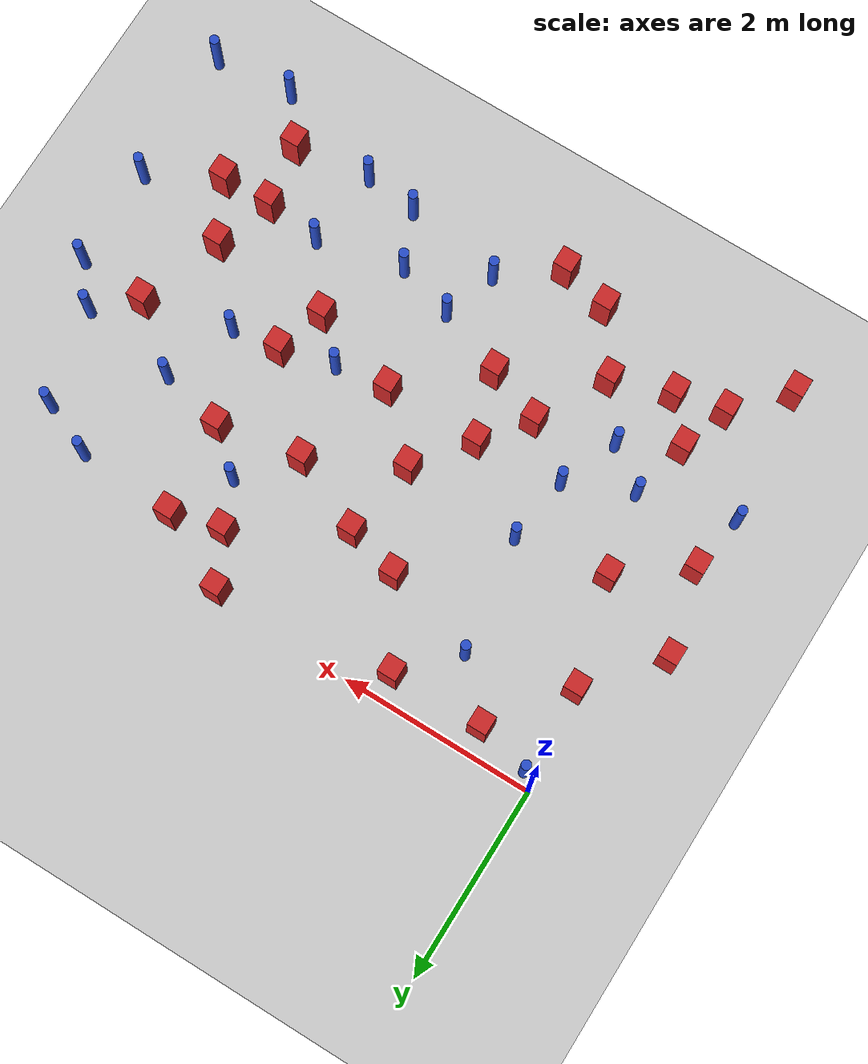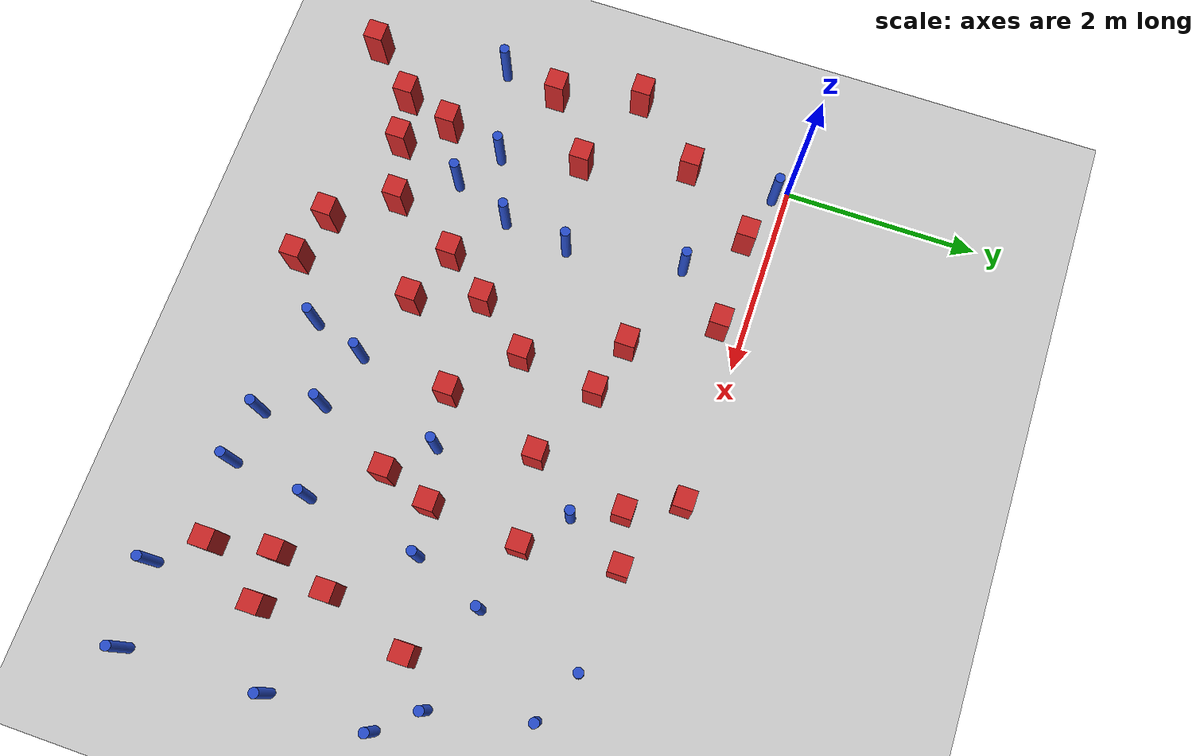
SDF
<sdf version="1.6">
 <world name="default">
  <model name="ground_plane">
   <static>1</static>
   <link name="link">
    <collision name="collision">
     <geometry><plane><normal>0 0 1</normal><size>100 100</size></plane></geometry>
     <surface><friction><ode><mu>100</mu><mu2>50</mu2></ode></friction></surface>
    </collision>
    <visual name="visual">
     <cast_shadows>0</cast_shadows>
     <geometry><plane><normal>0 0 1</normal><size>100 100</size></plane></geometry>
     <material>
      <ambient>1.0 1.0 1.0 1.0</ambient>
      <diffuse>0.8 0.8 0.8 1.0</diffuse>
      <specular>0.01 0.01 0.01 1.000000</specular>
     </material>
    </visual>
   </link>
  </model>
  <model name="NamedLocations">
   <static>true</static>
   <link name="DefaultStart"><pose>8.5 0 0 0 0 3.14</pose></link>
  </model>
  <model name="pole_obstacle6">
   <static>true</static>
   <pose>1.34641846792 -1.97543661857 2.88873142074e-08 -9.90536689899e-09 4.60219948988e-07 -1.20965994961e-07</pose>
   <link name="link">
    <pose>0 0 0.3 0 -0 0</pose>
    <inertial>
     <mass>1</mass>
     <inertia><ixx>0.145833</ixx><ixy>0</ixy><ixz>0</ixz><iyy>0.145833</iyy><iyz>0</iyz><izz>0.125</izz></inertia>
    </inertial>
    <collision name="collision">
     <geometry><cylinder><radius>0.05</radius><length>.6</length></cylinder></geometry>
    </collision>
    <visual name="visual">
     <geometry><cylinder><radius>0.05</radius><length>.6</length></cylinder></geometry>
     <material>
      <script><name>Gazebo/Blue</name><uri>file://media/materials/scripts/gazebo.material</uri></script>
     </material>
    </visual>
   </link>
  </model>
  <model name="pole_obstacle10">
   <static>true</static>
   <pose>5.80582002486 -0.743763885813 2.88873142074e-08 -9.90536689837e-09 4.60219948989e-07 -1.2096599496e-07</pose>
   <link name="link">
    <pose>0 0 0.3 0 -0 0</pose>
    <inertial>
     <mass>1</mass>
     <inertia><ixx>0.145833</ixx><ixy>0</ixy><ixz>0</ixz><iyy>0.145833</iyy><iyz>0</iyz><izz>0.125</izz></inertia>
    </inertial>
    <collision name="collision">
     <geometry><cylinder><radius>0.05</radius><length>.6</length></cylinder></geometry>
    </collision>
    <visual name="visual">
     <geometry><cylinder><radius>0.05</radius><length>.6</length></cylinder></geometry>
     <material>
      <script><name>Gazebo/Blue</name><uri>file://media/materials/scripts/gazebo.material</uri></script>
     </material>
    </visual>
   </link>
  </model>
  <model name="square_post_obstacle14">
   <static>true</static>
   <pose>1.64560090452 -0.264269106683 8.22691968438e-08 7.22125133819e-06 -7.54495500217e-07 2.29674213826e-05</pose>
   <link name="link">
    <pose>0 0 0.25 0 -0 0</pose>
    <inertial>
     <mass>100</mass>
     <inertia>
      <ixx>0.166667</ixx>
      <ixy>0</ixy>
      <ixz>0</ixz>
      <iyy>0.166667</iyy>
      <iyz>0</iyz>
      <izz>0.166667</izz>
     </inertia>
    </inertial>
    <collision name="collision"><geometry><box><size>.2 .2 .5</size></box></geometry></collision>
    <visual name="visual">
     <geometry><box><size>.2 .2 .5</size></box></geometry>
     <material>
      <script><name>Gazebo/Red</name><uri>file://media/materials/scripts/gazebo.material</uri></script>
     </material>
    </visual>
   </link>
  </model>
  <model name="pole_obstacle20">
   <static>true</static>
   <pose>6.03167344364 -1.739237854 2.88873142074e-08 -9.90536689445e-09 4.60219948999e-07 -1.20965994956e-07</pose>
   <link name="link">
    <pose>0 0 0.3 0 -0 0</pose>
    <inertial>
     <mass>1</mass>
     <inertia><ixx>0.145833</ixx><ixy>0</ixy><ixz>0</ixz><iyy>0.145833</iyy><iyz>0</iyz><izz>0.125</izz></inertia>
    </inertial>
    <collision name="collision">
     <geometry><cylinder><radius>0.05</radius><length>.6</length></cylinder></geometry>
    </collision>
    <visual name="visual">
     <geometry><cylinder><radius>0.05</radius><length>.6</length></cylinder></geometry>
     <material>
      <script><name>Gazebo/Blue</name><uri>file://media/materials/scripts/gazebo.material</uri></script>
     </material>
    </visual>
   </link>
  </model>
  <model name="pole_obstacle27">
   <static>true</static>
   <pose>4.74106831965 -2.30007522335 2.88873142074e-08 -9.90536690245e-09 4.6021994898e-07 -1.20965994966e-07</pose>
   <link name="link">
    <pose>0 0 0.3 0 -0 0</pose>
    <inertial>
     <mass>1</mass>
     <inertia><ixx>0.145833</ixx><ixy>0</ixy><ixz>0</ixz><iyy>0.145833</iyy><iyz>0</iyz><izz>0.125</izz></inertia>
    </inertial>
    <collision name="collision">
     <geometry><cylinder><radius>0.05</radius><length>.6</length></cylinder></geometry>
    </collision>
    <visual name="visual">
     <geometry><cylinder><radius>0.05</radius><length>.6</length></cylinder></geometry>
     <material>
      <script><name>Gazebo/Blue</name><uri>file://media/materials/scripts/gazebo.material</uri></script>
     </material>
    </visual>
   </link>
  </model>
  <model name="pole_obstacle30">
   <static>true</static>
   <pose>2.88440577546 -4.08760206621 2.88873142074e-08 -9.90536689859e-09 4.60219948989e-07 -1.20965994961e-07</pose>
   <link name="link">
    <pose>0 0 0.3 0 -0 0</pose>
    <inertial>
     <mass>1</mass>
     <inertia><ixx>0.145833</ixx><ixy>0</ixy><ixz>0</ixz><iyy>0.145833</iyy><iyz>0</iyz><izz>0.125</izz></inertia>
    </inertial>
    <collision name="collision">
     <geometry><cylinder><radius>0.05</radius><length>.6</length></cylinder></geometry>
    </collision>
    <visual name="visual">
     <geometry><cylinder><radius>0.05</radius><length>.6</length></cylinder></geometry>
     <material>
      <script><name>Gazebo/Blue</name><uri>file://media/materials/scripts/gazebo.material</uri></script>
     </material>
    </visual>
   </link>
  </model>
  <model name="pole_obstacle41">
   <static>true</static>
   <pose>5.01929388465 -1.57533760443 2.88873142074e-08 -9.90536689445e-09 4.60219948999e-07 -1.20965994956e-07</pose>
   <link name="link">
    <pose>0 0 0.3 0 -0 0</pose>
    <inertial>
     <mass>1</mass>
     <inertia><ixx>0.145833</ixx><ixy>0</ixy><ixz>0</ixz><iyy>0.145833</iyy><iyz>0</iyz><izz>0.125</izz></inertia>
    </inertial>
    <collision name="collision">
     <geometry><cylinder><radius>0.05</radius><length>.6</length></cylinder></geometry>
    </collision>
    <visual name="visual">
     <geometry><cylinder><radius>0.05</radius><length>.6</length></cylinder></geometry>
     <material>
      <script><name>Gazebo/Blue</name><uri>file://media/materials/scripts/gazebo.material</uri></script>
     </material>
    </visual>
   </link>
  </model>
  <model name="square_post_obstacle31">
   <static>true</static>
   <pose>-0.474966905245 -1.75005010223 8.22691968438e-08 7.2212513382e-06 -7.54495500217e-07 2.29674213826e-05</pose>
   <link name="link">
    <pose>0 0 0.25 0 -0 0</pose>
    <inertial>
     <mass>100</mass>
     <inertia>
      <ixx>0.166667</ixx>
      <ixy>0</ixy>
      <ixz>0</ixz>
      <iyy>0.166667</iyy>
      <iyz>0</iyz>
      <izz>0.166667</izz>
     </inertia>
    </inertial>
    <collision name="collision"><geometry><box><size>.2 .2 .5</size></box></geometry></collision>
    <visual name="visual">
     <geometry><box><size>.2 .2 .5</size></box></geometry>
     <material>
      <script><name>Gazebo/Red</name><uri>file://media/materials/scripts/gazebo.material</uri></script>
     </material>
    </visual>
   </link>
  </model>
  <model name="square_post_obstacle34">
   <static>true</static>
   <pose>4.07631354166 -2.87549634228 8.22691968438e-08 7.2212513382e-06 -7.54495500217e-07 2.29674213826e-05</pose>
   <link name="link">
    <pose>0 0 0.25 0 -0 0</pose>
    <inertial>
     <mass>100</mass>
     <inertia>
      <ixx>0.166667</ixx>
      <ixy>0</ixy>
      <ixz>0</ixz>
      <iyy>0.166667</iyy>
      <iyz>0</iyz>
      <izz>0.166667</izz>
     </inertia>
    </inertial>
    <collision name="collision"><geometry><box><size>.2 .2 .5</size></box></geometry></collision>
    <visual name="visual">
     <geometry><box><size>.2 .2 .5</size></box></geometry>
     <material>
      <script><name>Gazebo/Red</name><uri>file://media/materials/scripts/gazebo.material</uri></script>
     </material>
    </visual>
   </link>
  </model>
  <model name="pole_obstacle46">
   <static>true</static>
   <pose>3.06816379555 -3.53167319148 2.88873142074e-08 -9.90536690232e-09 4.6021994898e-07 -1.20965994968e-07</pose>
   <link name="link">
    <pose>0 0 0.3 0 -0 0</pose>
    <inertial>
     <mass>1</mass>
     <inertia><ixx>0.145833</ixx><ixy>0</ixy><ixz>0</ixz><iyy>0.145833</iyy><iyz>0</iyz><izz>0.125</izz></inertia>
    </inertial>
    <collision name="collision">
     <geometry><cylinder><radius>0.05</radius><length>.6</length></cylinder></geometry>
    </collision>
    <visual name="visual">
     <geometry><cylinder><radius>0.05</radius><length>.6</length></cylinder></geometry>
     <material>
      <script><name>Gazebo/Blue</name><uri>file://media/materials/scripts/gazebo.material</uri></script>
     </material>
    </visual>
   </link>
  </model>
  <model name="square_post_obstacle36">
   <static>true</static>
   <pose>5.32274232376 -2.96270476797 8.22691968438e-08 7.2212513382e-06 -7.54495500217e-07 2.29674213826e-05</pose>
   <link name="link">
    <pose>0 0 0.25 0 -0 0</pose>
    <inertial>
     <mass>100</mass>
     <inertia>
      <ixx>0.166667</ixx>
      <ixy>0</ixy>
      <ixz>0</ixz>
      <iyy>0.166667</iyy>
      <iyz>0</iyz>
      <izz>0.166667</izz>
     </inertia>
    </inertial>
    <collision name="collision"><geometry><box><size>.2 .2 .5</size></box></geometry></collision>
    <visual name="visual">
     <geometry><box><size>.2 .2 .5</size></box></geometry>
     <material>
      <script><name>Gazebo/Red</name><uri>file://media/materials/scripts/gazebo.material</uri></script>
     </material>
    </visual>
   </link>
  </model>
  <model name="square_post_obstacle37">
   <static>true</static>
   <pose>3.46657610358 -1.55949613198 8.22691968438e-08 7.2212513382e-06 -7.54495500217e-07 2.29674213826e-05</pose>
   <link name="link">
    <pose>0 0 0.25 0 -0 0</pose>
    <inertial>
     <mass>100</mass>
     <inertia>
      <ixx>0.166667</ixx>
      <ixy>0</ixy>
      <ixz>0</ixz>
      <iyy>0.166667</iyy>
      <iyz>0</iyz>
      <izz>0.166667</izz>
     </inertia>
    </inertial>
    <collision name="collision"><geometry><box><size>.2 .2 .5</size></box></geometry></collision>
    <visual name="visual">
     <geometry><box><size>.2 .2 .5</size></box></geometry>
     <material>
      <script><name>Gazebo/Red</name><uri>file://media/materials/scripts/gazebo.material</uri></script>
     </material>
    </visual>
   </link>
  </model>
  <model name="pole_obstacle52">
   <static>true</static>
   <pose>4.45046576271 -4.32073719949 2.88873142074e-08 -9.90536690842e-09 4.60219948965e-07 -1.20965994976e-07</pose>
   <link name="link">
    <pose>0 0 0.3 0 -0 0</pose>
    <inertial>
     <mass>1</mass>
     <inertia><ixx>0.145833</ixx><ixy>0</ixy><ixz>0</ixz><iyy>0.145833</iyy><iyz>0</iyz><izz>0.125</izz></inertia>
    </inertial>
    <collision name="collision">
     <geometry><cylinder><radius>0.05</radius><length>.6</length></cylinder></geometry>
    </collision>
    <visual name="visual">
     <geometry><cylinder><radius>0.05</radius><length>.6</length></cylinder></geometry>
     <material>
      <script><name>Gazebo/Blue</name><uri>file://media/materials/scripts/gazebo.material</uri></script>
     </material>
    </visual>
   </link>
  </model>
  <model name="square_post_obstacle54">
   <static>true</static>
   <pose>-0.251787581725 -2.61775318182 8.22691968438e-08 7.2212513382e-06 -7.54495500217e-07 2.29674213826e-05</pose>
   <link name="link">
    <pose>0 0 0.25 0 -0 0</pose>
    <inertial>
     <mass>100</mass>
     <inertia>
      <ixx>0.166667</ixx>
      <ixy>0</ixy>
      <ixz>0</ixz>
      <iyy>0.166667</iyy>
      <iyz>0</iyz>
      <izz>0.166667</izz>
     </inertia>
    </inertial>
    <collision name="collision"><geometry><box><size>.2 .2 .5</size></box></geometry></collision>
    <visual name="visual">
     <geometry><box><size>.2 .2 .5</size></box></geometry>
     <material>
      <script><name>Gazebo/Red</name><uri>file://media/materials/scripts/gazebo.material</uri></script>
     </material>
    </visual>
   </link>
  </model>
  <model name="square_post_obstacle59">
   <static>true</static>
   <pose>4.33564261244 -1.41323514595 8.22691968438e-08 7.2212513382e-06 -7.54495500217e-07 2.29674213826e-05</pose>
   <link name="link">
    <pose>0 0 0.25 0 -0 0</pose>
    <inertial>
     <mass>100</mass>
     <inertia>
      <ixx>0.166667</ixx>
      <ixy>0</ixy>
      <ixz>0</ixz>
      <iyy>0.166667</iyy>
      <iyz>0</iyz>
      <izz>0.166667</izz>
     </inertia>
    </inertial>
    <collision name="collision"><geometry><box><size>.2 .2 .5</size></box></geometry></collision>
    <visual name="visual">
     <geometry><box><size>.2 .2 .5</size></box></geometry>
     <material>
      <script><name>Gazebo/Red</name><uri>file://media/materials/scripts/gazebo.material</uri></script>
     </material>
    </visual>
   </link>
  </model>
  <model name="square_post_obstacle61">
   <static>true</static>
   <pose>0.448758906643 -3.56202329587 8.22691968438e-08 7.22125133819e-06 -7.54495500217e-07 2.29674213826e-05</pose>
   <link name="link">
    <pose>0 0 0.25 0 -0 0</pose>
    <inertial>
     <mass>100</mass>
     <inertia>
      <ixx>0.166667</ixx>
      <ixy>0</ixy>
      <ixz>0</ixz>
      <iyy>0.166667</iyy>
      <iyz>0</iyz>
      <izz>0.166667</izz>
     </inertia>
    </inertial>
    <collision name="collision"><geometry><box><size>.2 .2 .5</size></box></geometry></collision>
    <visual name="visual">
     <geometry><box><size>.2 .2 .5</size></box></geometry>
     <material>
      <script><name>Gazebo/Red</name><uri>file://media/materials/scripts/gazebo.material</uri></script>
     </material>
    </visual>
   </link>
  </model>
  <model name="pole_obstacle74">
   <static>true</static>
   <pose>1.16527005785 -0.780518405631 2.88873142074e-08 -9.90536689692e-09 4.60219948993e-07 -1.20965994958e-07</pose>
   <link name="link">
    <pose>0 0 0.3 0 -0 0</pose>
    <inertial>
     <mass>1</mass>
     <inertia><ixx>0.145833</ixx><ixy>0</ixy><ixz>0</ixz><iyy>0.145833</iyy><iyz>0</iyz><izz>0.125</izz></inertia>
    </inertial>
    <collision name="collision">
     <geometry><cylinder><radius>0.05</radius><length>.6</length></cylinder></geometry>
    </collision>
    <visual name="visual">
     <geometry><cylinder><radius>0.05</radius><length>.6</length></cylinder></geometry>
     <material>
      <script><name>Gazebo/Blue</name><uri>file://media/materials/scripts/gazebo.material</uri></script>
     </material>
    </visual>
   </link>
  </model>
  <model name="pole_obstacle75">
   <static>true</static>
   <pose>3.65819816869 -3.7014148828 2.88873142074e-08 -9.90536690232e-09 4.6021994898e-07 -1.20965994968e-07</pose>
   <link name="link">
    <pose>0 0 0.3 0 -0 0</pose>
    <inertial>
     <mass>1</mass>
     <inertia><ixx>0.145833</ixx><ixy>0</ixy><ixz>0</ixz><iyy>0.145833</iyy><iyz>0</iyz><izz>0.125</izz></inertia>
    </inertial>
    <collision name="collision">
     <geometry><cylinder><radius>0.05</radius><length>.6</length></cylinder></geometry>
    </collision>
    <visual name="visual">
     <geometry><cylinder><radius>0.05</radius><length>.6</length></cylinder></geometry>
     <material>
      <script><name>Gazebo/Blue</name><uri>file://media/materials/scripts/gazebo.material</uri></script>
     </material>
    </visual>
   </link>
  </model>
  <model name="pole_obstacle81">
   <static>true</static>
   <pose>1.00762132224 -3.26568031372 2.88873142074e-08 -9.905366898e-09 4.6021994899e-07 -1.20965994959e-07</pose>
   <link name="link">
    <pose>0 0 0.3 0 -0 0</pose>
    <inertial>
     <mass>1</mass>
     <inertia><ixx>0.145833</ixx><ixy>0</ixy><ixz>0</ixz><iyy>0.145833</iyy><iyz>0</iyz><izz>0.125</izz></inertia>
    </inertial>
    <collision name="collision">
     <geometry><cylinder><radius>0.05</radius><length>.6</length></cylinder></geometry>
    </collision>
    <visual name="visual">
     <geometry><cylinder><radius>0.05</radius><length>.6</length></cylinder></geometry>
     <material>
      <script><name>Gazebo/Blue</name><uri>file://media/materials/scripts/gazebo.material</uri></script>
     </material>
    </visual>
   </link>
  </model>
  <model name="pole_obstacle87">
   <static>true</static>
   <pose>6.35432098423 -3.17812975755 2.88873142074e-08 -9.90536690245e-09 4.6021994898e-07 -1.20965994966e-07</pose>
   <link name="link">
    <pose>0 0 0.3 0 -0 0</pose>
    <inertial>
     <mass>1</mass>
     <inertia><ixx>0.145833</ixx><ixy>0</ixy><ixz>0</ixz><iyy>0.145833</iyy><iyz>0</iyz><izz>0.125</izz></inertia>
    </inertial>
    <collision name="collision">
     <geometry><cylinder><radius>0.05</radius><length>.6</length></cylinder></geometry>
    </collision>
    <visual name="visual">
     <geometry><cylinder><radius>0.05</radius><length>.6</length></cylinder></geometry>
     <material>
      <script><name>Gazebo/Blue</name><uri>file://media/materials/scripts/gazebo.material</uri></script>
     </material>
    </visual>
   </link>
  </model>
  <model name="square_post_obstacle75">
   <static>true</static>
   <pose>2.14793076846 -2.57618197655 8.22691968438e-08 7.2212513382e-06 -7.54495500217e-07 2.29674213826e-05</pose>
   <link name="link">
    <pose>0 0 0.25 0 -0 0</pose>
    <inertial>
     <mass>100</mass>
     <inertia>
      <ixx>0.166667</ixx>
      <ixy>0</ixy>
      <ixz>0</ixz>
      <iyy>0.166667</iyy>
      <iyz>0</iyz>
      <izz>0.166667</izz>
     </inertia>
    </inertial>
    <collision name="collision"><geometry><box><size>.2 .2 .5</size></box></geometry></collision>
    <visual name="visual">
     <geometry><box><size>.2 .2 .5</size></box></geometry>
     <material>
      <script><name>Gazebo/Red</name><uri>file://media/materials/scripts/gazebo.material</uri></script>
     </material>
    </visual>
   </link>
  </model>
  <model name="square_post_obstacle78">
   <static>true</static>
   <pose>3.72600006284 -0.58351186251 8.22691968438e-08 7.2212513382e-06 -7.54495500217e-07 2.29674213826e-05</pose>
   <link name="link">
    <pose>0 0 0.25 0 -0 0</pose>
    <inertial>
     <mass>100</mass>
     <inertia>
      <ixx>0.166667</ixx>
      <ixy>0</ixy>
      <ixz>0</ixz>
      <iyy>0.166667</iyy>
      <iyz>0</iyz>
      <izz>0.166667</izz>
     </inertia>
    </inertial>
    <collision name="collision"><geometry><box><size>.2 .2 .5</size></box></geometry></collision>
    <visual name="visual">
     <geometry><box><size>.2 .2 .5</size></box></geometry>
     <material>
      <script><name>Gazebo/Red</name><uri>file://media/materials/scripts/gazebo.material</uri></script>
     </material>
    </visual>
   </link>
  </model>
  <model name="pole_obstacle90">
   <static>true</static>
   <pose>5.57941327294 -4.66151152191 2.88873142074e-08 -9.90536690842e-09 4.60219948965e-07 -1.20965994976e-07</pose>
   <link name="link">
    <pose>0 0 0.3 0 -0 0</pose>
    <inertial>
     <mass>1</mass>
     <inertia><ixx>0.145833</ixx><ixy>0</ixy><ixz>0</ixz><iyy>0.145833</iyy><iyz>0</iyz><izz>0.125</izz></inertia>
    </inertial>
    <collision name="collision">
     <geometry><cylinder><radius>0.05</radius><length>.6</length></cylinder></geometry>
    </collision>
    <visual name="visual">
     <geometry><cylinder><radius>0.05</radius><length>.6</length></cylinder></geometry>
     <material>
      <script><name>Gazebo/Blue</name><uri>file://media/materials/scripts/gazebo.material</uri></script>
     </material>
    </visual>
   </link>
  </model>
  <model name="square_post_obstacle86">
   <static>true</static>
   <pose>2.68795937951 -1.21685787039 8.22691968438e-08 7.2212513382e-06 -7.54495500217e-07 2.29674213826e-05</pose>
   <link name="link">
    <pose>0 0 0.25 0 -0 0</pose>
    <inertial>
     <mass>100</mass>
     <inertia>
      <ixx>0.166667</ixx>
      <ixy>0</ixy>
      <ixz>0</ixz>
      <iyy>0.166667</iyy>
      <iyz>0</iyz>
      <izz>0.166667</izz>
     </inertia>
    </inertial>
    <collision name="collision"><geometry><box><size>.2 .2 .5</size></box></geometry></collision>
    <visual name="visual">
     <geometry><box><size>.2 .2 .5</size></box></geometry>
     <material>
      <script><name>Gazebo/Red</name><uri>file://media/materials/scripts/gazebo.material</uri></script>
     </material>
    </visual>
   </link>
  </model>
  <model name="square_post_obstacle88">
   <static>true</static>
   <pose>2.13616656316 -1.07224502167 8.22691968438e-08 7.2212513382e-06 -7.54495500217e-07 2.29674213826e-05</pose>
   <link name="link">
    <pose>0 0 0.25 0 -0 0</pose>
    <inertial>
     <mass>100</mass>
     <inertia>
      <ixx>0.166667</ixx>
      <ixy>0</ixy>
      <ixz>0</ixz>
      <iyy>0.166667</iyy>
      <iyz>0</iyz>
      <izz>0.166667</izz>
     </inertia>
    </inertial>
    <collision name="collision"><geometry><box><size>.2 .2 .5</size></box></geometry></collision>
    <visual name="visual">
     <geometry><box><size>.2 .2 .5</size></box></geometry>
     <material>
      <script><name>Gazebo/Red</name><uri>file://media/materials/scripts/gazebo.material</uri></script>
     </material>
    </visual>
   </link>
  </model>
  <model name="square_post_obstacle105">
   <static>true</static>
   <pose>2.31030790588 -4.5056631495 8.22691968438e-08 7.22125133819e-06 -7.54495500217e-07 2.29674213826e-05</pose>
   <link name="link">
    <pose>0 0 0.25 0 -0 0</pose>
    <inertial>
     <mass>100</mass>
     <inertia>
      <ixx>0.166667</ixx>
      <ixy>0</ixy>
      <ixz>0</ixz>
      <iyy>0.166667</iyy>
      <iyz>0</iyz>
      <izz>0.166667</izz>
     </inertia>
    </inertial>
    <collision name="collision"><geometry><box><size>.2 .2 .5</size></box></geometry></collision>
    <visual name="visual">
     <geometry><box><size>.2 .2 .5</size></box></geometry>
     <material>
      <script><name>Gazebo/Red</name><uri>file://media/materials/scripts/gazebo.material</uri></script>
     </material>
    </visual>
   </link>
  </model>
  <model name="square_post_obstacle106">
   <static>true</static>
   <pose>2.56909454013 -2.02329655609 8.22691968438e-08 7.22125133819e-06 -7.54495500217e-07 2.29674213826e-05</pose>
   <link name="link">
    <pose>0 0 0.25 0 -0 0</pose>
    <inertial>
     <mass>100</mass>
     <inertia>
      <ixx>0.166667</ixx>
      <ixy>0</ixy>
      <ixz>0</ixz>
      <iyy>0.166667</iyy>
      <iyz>0</iyz>
      <izz>0.166667</izz>
     </inertia>
    </inertial>
    <collision name="collision"><geometry><box><size>.2 .2 .5</size></box></geometry></collision>
    <visual name="visual">
     <geometry><box><size>.2 .2 .5</size></box></geometry>
     <material>
      <script><name>Gazebo/Red</name><uri>file://media/materials/scripts/gazebo.material</uri></script>
     </material>
    </visual>
   </link>
  </model>
  <model name="square_post_obstacle109">
   <static>true</static>
   <pose>4.24049609613 -0.453682885831 8.22691968438e-08 7.2212513382e-06 -7.54495500217e-07 2.29674213826e-05</pose>
   <link name="link">
    <pose>0 0 0.25 0 -0 0</pose>
    <inertial>
     <mass>100</mass>
     <inertia>
      <ixx>0.166667</ixx>
      <ixy>0</ixy>
      <ixz>0</ixz>
      <iyy>0.166667</iyy>
      <iyz>0</iyz>
      <izz>0.166667</izz>
     </inertia>
    </inertial>
    <collision name="collision"><geometry><box><size>.2 .2 .5</size></box></geometry></collision>
    <visual name="visual">
     <geometry><box><size>.2 .2 .5</size></box></geometry>
     <material>
      <script><name>Gazebo/Red</name><uri>file://media/materials/scripts/gazebo.material</uri></script>
     </material>
    </visual>
   </link>
  </model>
  <model name="square_post_obstacle120">
   <static>true</static>
   <pose>5.62020520013 -2.08286294799 8.22691968438e-08 7.2212513382e-06 -7.54495500217e-07 2.29674213826e-05</pose>
   <link name="link">
    <pose>0 0 0.25 0 -0 0</pose>
    <inertial>
     <mass>100</mass>
     <inertia>
      <ixx>0.166667</ixx>
      <ixy>0</ixy>
      <ixz>0</ixz>
      <iyy>0.166667</iyy>
      <iyz>0</iyz>
      <izz>0.166667</izz>
     </inertia>
    </inertial>
    <collision name="collision"><geometry><box><size>.2 .2 .5</size></box></geometry></collision>
    <visual name="visual">
     <geometry><box><size>.2 .2 .5</size></box></geometry>
     <material>
      <script><name>Gazebo/Red</name><uri>file://media/materials/scripts/gazebo.material</uri></script>
     </material>
    </visual>
   </link>
  </model>
  <model name="pole_obstacle127">
   <static>true</static>
   <pose>3.92827951571 -1.05072085155 2.88873142074e-08 -9.90536689395e-09 4.60219949e-07 -1.20965994953e-07</pose>
   <link name="link">
    <pose>0 0 0.3 0 -0 0</pose>
    <inertial>
     <mass>1</mass>
     <inertia><ixx>0.145833</ixx><ixy>0</ixy><ixz>0</ixz><iyy>0.145833</iyy><iyz>0</iyz><izz>0.125</izz></inertia>
    </inertial>
    <collision name="collision">
     <geometry><cylinder><radius>0.05</radius><length>.6</length></cylinder></geometry>
    </collision>
    <visual name="visual">
     <geometry><cylinder><radius>0.05</radius><length>.6</length></cylinder></geometry>
     <material>
      <script><name>Gazebo/Blue</name><uri>file://media/materials/scripts/gazebo.material</uri></script>
     </material>
    </visual>
   </link>
  </model>
  <model name="square_post_obstacle125">
   <static>true</static>
   <pose>0.11425943525 -1.04027931877 8.22691968438e-08 7.22125133819e-06 -7.54495500217e-07 2.29674213826e-05</pose>
   <link name="link">
    <pose>0 0 0.25 0 -0 0</pose>
    <inertial>
     <mass>100</mass>
     <inertia>
      <ixx>0.166667</ixx>
      <ixy>0</ixy>
      <ixz>0</ixz>
      <iyy>0.166667</iyy>
      <iyz>0</iyz>
      <izz>0.166667</izz>
     </inertia>
    </inertial>
    <collision name="collision"><geometry><box><size>.2 .2 .5</size></box></geometry></collision>
    <visual name="visual">
     <geometry><box><size>.2 .2 .5</size></box></geometry>
     <material>
      <script><name>Gazebo/Red</name><uri>file://media/materials/scripts/gazebo.material</uri></script>
     </material>
    </visual>
   </link>
  </model>
  <model name="square_post_obstacle131">
   <static>true</static>
   <pose>-0.187846628503 -4.59078098802 8.22691968438e-08 7.22125133819e-06 -7.54495500217e-07 2.29674213826e-05</pose>
   <link name="link">
    <pose>0 0 0.25 0 -0 0</pose>
    <inertial>
     <mass>100</mass>
     <inertia>
      <ixx>0.166667</ixx>
      <ixy>0</ixy>
      <ixz>0</ixz>
      <iyy>0.166667</iyy>
      <iyz>0</iyz>
      <izz>0.166667</izz>
     </inertia>
    </inertial>
    <collision name="collision"><geometry><box><size>.2 .2 .5</size></box></geometry></collision>
    <visual name="visual">
     <geometry><box><size>.2 .2 .5</size></box></geometry>
     <material>
      <script><name>Gazebo/Red</name><uri>file://media/materials/scripts/gazebo.material</uri></script>
     </material>
    </visual>
   </link>
  </model>
  <model name="pole_obstacle133">
   <static>true</static>
   <pose>5.27606355559 -0.510497953869 2.88873142074e-08 -9.90536689968e-09 4.60219948986e-07 -1.20965994963e-07</pose>
   <link name="link">
    <pose>0 0 0.3 0 -0 0</pose>
    <inertial>
     <mass>1</mass>
     <inertia><ixx>0.145833</ixx><ixy>0</ixy><ixz>0</ixz><iyy>0.145833</iyy><iyz>0</iyz><izz>0.125</izz></inertia>
    </inertial>
    <collision name="collision">
     <geometry><cylinder><radius>0.05</radius><length>.6</length></cylinder></geometry>
    </collision>
    <visual name="visual">
     <geometry><cylinder><radius>0.05</radius><length>.6</length></cylinder></geometry>
     <material>
      <script><name>Gazebo/Blue</name><uri>file://media/materials/scripts/gazebo.material</uri></script>
     </material>
    </visual>
   </link>
  </model>
  <model name="pole_obstacle134">
   <static>true</static>
   <pose>3.89912026445 -4.25301164418 2.88873142074e-08 -9.90536689859e-09 4.60219948989e-07 -1.20965994961e-07</pose>
   <link name="link">
    <pose>0 0 0.3 0 -0 0</pose>
    <inertial>
     <mass>1</mass>
     <inertia><ixx>0.145833</ixx><ixy>0</ixy><ixz>0</ixz><iyy>0.145833</iyy><iyz>0</iyz><izz>0.125</izz></inertia>
    </inertial>
    <collision name="collision">
     <geometry><cylinder><radius>0.05</radius><length>.6</length></cylinder></geometry>
    </collision>
    <visual name="visual">
     <geometry><cylinder><radius>0.05</radius><length>.6</length></cylinder></geometry>
     <material>
      <script><name>Gazebo/Blue</name><uri>file://media/materials/scripts/gazebo.material</uri></script>
     </material>
    </visual>
   </link>
  </model>
  <model name="pole_obstacle137">
   <static>true</static>
   <pose>-0.354575273485 -3.21784176641 2.88873142074e-08 -9.90536689663e-09 4.60219948993e-07 -1.20965994959e-07</pose>
   <link name="link">
    <pose>0 0 0.3 0 -0 0</pose>
    <inertial>
     <mass>1</mass>
     <inertia><ixx>0.145833</ixx><ixy>0</ixy><ixz>0</ixz><iyy>0.145833</iyy><iyz>0</iyz><izz>0.125</izz></inertia>
    </inertial>
    <collision name="collision">
     <geometry><cylinder><radius>0.05</radius><length>.6</length></cylinder></geometry>
    </collision>
    <visual name="visual">
     <geometry><cylinder><radius>0.05</radius><length>.6</length></cylinder></geometry>
     <material>
      <script><name>Gazebo/Blue</name><uri>file://media/materials/scripts/gazebo.material</uri></script>
     </material>
    </visual>
   </link>
  </model>
  <model name="square_post_obstacle141">
   <static>true</static>
   <pose>5.11856196218 -3.56045827837 8.22691968438e-08 7.2212513382e-06 -7.54495500217e-07 2.29674213826e-05</pose>
   <link name="link">
    <pose>0 0 0.25 0 -0 0</pose>
    <inertial>
     <mass>100</mass>
     <inertia>
      <ixx>0.166667</ixx>
      <ixy>0</ixy>
      <ixz>0</ixz>
      <iyy>0.166667</iyy>
      <iyz>0</iyz>
      <izz>0.166667</izz>
     </inertia>
    </inertial>
    <collision name="collision"><geometry><box><size>.2 .2 .5</size></box></geometry></collision>
    <visual name="visual">
     <geometry><box><size>.2 .2 .5</size></box></geometry>
     <material>
      <script><name>Gazebo/Red</name><uri>file://media/materials/scripts/gazebo.material</uri></script>
     </material>
    </visual>
   </link>
  </model>
  <model name="square_post_obstacle143">
   <static>true</static>
   <pose>3.46680928187 -0.0691034552065 8.22691968438e-08 7.22125133819e-06 -7.54495500217e-07 2.29674213826e-05</pose>
   <link name="link">
    <pose>0 0 0.25 0 -0 0</pose>
    <inertial>
     <mass>100</mass>
     <inertia>
      <ixx>0.166667</ixx>
      <ixy>0</ixy>
      <ixz>0</ixz>
      <iyy>0.166667</iyy>
      <iyz>0</iyz>
      <izz>0.166667</izz>
     </inertia>
    </inertial>
    <collision name="collision"><geometry><box><size>.2 .2 .5</size></box></geometry></collision>
    <visual name="visual">
     <geometry><box><size>.2 .2 .5</size></box></geometry>
     <material>
      <script><name>Gazebo/Red</name><uri>file://media/materials/scripts/gazebo.material</uri></script>
     </material>
    </visual>
   </link>
  </model>
  <model name="pole_obstacle154">
   <static>true</static>
   <pose>6.39900763734 -4.59178776342 2.88873142074e-08 -9.90536690842e-09 4.60219948965e-07 -1.20965994976e-07</pose>
   <link name="link">
    <pose>0 0 0.3 0 -0 0</pose>
    <inertial>
     <mass>1</mass>
     <inertia><ixx>0.145833</ixx><ixy>0</ixy><ixz>0</ixz><iyy>0.145833</iyy><iyz>0</iyz><izz>0.125</izz></inertia>
    </inertial>
    <collision name="collision">
     <geometry><cylinder><radius>0.05</radius><length>.6</length></cylinder></geometry>
    </collision>
    <visual name="visual">
     <geometry><cylinder><radius>0.05</radius><length>.6</length></cylinder></geometry>
     <material>
      <script><name>Gazebo/Blue</name><uri>file://media/materials/scripts/gazebo.material</uri></script>
     </material>
    </visual>
   </link>
  </model>
  <model name="pole_obstacle163">
   <static>true</static>
   <pose>3.69490336191 -2.51015846994 2.88873142074e-08 -9.90536690232e-09 4.6021994898e-07 -1.20965994968e-07</pose>
   <link name="link">
    <pose>0 0 0.3 0 -0 0</pose>
    <inertial>
     <mass>1</mass>
     <inertia><ixx>0.145833</ixx><ixy>0</ixy><ixz>0</ixz><iyy>0.145833</iyy><iyz>0</iyz><izz>0.125</izz></inertia>
    </inertial>
    <collision name="collision">
     <geometry><cylinder><radius>0.05</radius><length>.6</length></cylinder></geometry>
    </collision>
    <visual name="visual">
     <geometry><cylinder><radius>0.05</radius><length>.6</length></cylinder></geometry>
     <material>
      <script><name>Gazebo/Blue</name><uri>file://media/materials/scripts/gazebo.material</uri></script>
     </material>
    </visual>
   </link>
  </model>
  <model name="square_post_obstacle157">
   <static>true</static>
   <pose>1.79007988027 -3.04691999417 8.22691968438e-08 7.2212513382e-06 -7.54495500217e-07 2.29674213826e-05</pose>
   <link name="link">
    <pose>0 0 0.25 0 -0 0</pose>
    <inertial>
     <mass>100</mass>
     <inertia>
      <ixx>0.166667</ixx>
      <ixy>0</ixy>
      <ixz>0</ixz>
      <iyy>0.166667</iyy>
      <iyz>0</iyz>
      <izz>0.166667</izz>
     </inertia>
    </inertial>
    <collision name="collision"><geometry><box><size>.2 .2 .5</size></box></geometry></collision>
    <visual name="visual">
     <geometry><box><size>.2 .2 .5</size></box></geometry>
     <material>
      <script><name>Gazebo/Red</name><uri>file://media/materials/scripts/gazebo.material</uri></script>
     </material>
    </visual>
   </link>
  </model>
  <model name="square_post_obstacle164">
   <static>true</static>
   <pose>2.36331579382 -3.25802773604 8.22691968438e-08 7.2212513382e-06 -7.54495500217e-07 2.29674213826e-05</pose>
   <link name="link">
    <pose>0 0 0.25 0 -0 0</pose>
    <inertial>
     <mass>100</mass>
     <inertia>
      <ixx>0.166667</ixx>
      <ixy>0</ixy>
      <ixz>0</ixz>
      <iyy>0.166667</iyy>
      <iyz>0</iyz>
      <izz>0.166667</izz>
     </inertia>
    </inertial>
    <collision name="collision"><geometry><box><size>.2 .2 .5</size></box></geometry></collision>
    <visual name="visual">
     <geometry><box><size>.2 .2 .5</size></box></geometry>
     <material>
      <script><name>Gazebo/Red</name><uri>file://media/materials/scripts/gazebo.material</uri></script>
     </material>
    </visual>
   </link>
  </model>
  <model name="square_post_obstacle166">
   <static>true</static>
   <pose>0.781683153983 -3.97206309432 8.22691968438e-08 7.22125133819e-06 -7.54495500217e-07 2.29674213826e-05</pose>
   <link name="link">
    <pose>0 0 0.25 0 -0 0</pose>
    <inertial>
     <mass>100</mass>
     <inertia>
      <ixx>0.166667</ixx>
      <ixy>0</ixy>
      <ixz>0</ixz>
      <iyy>0.166667</iyy>
      <iyz>0</iyz>
      <izz>0.166667</izz>
     </inertia>
    </inertial>
    <collision name="collision"><geometry><box><size>.2 .2 .5</size></box></geometry></collision>
    <visual name="visual">
     <geometry><box><size>.2 .2 .5</size></box></geometry>
     <material>
      <script><name>Gazebo/Red</name><uri>file://media/materials/scripts/gazebo.material</uri></script>
     </material>
    </visual>
   </link>
  </model>
  <model name="square_post_obstacle170">
   <static>true</static>
   <pose>3.14399865003 -2.5775955518 8.22691968438e-08 7.2212513382e-06 -7.54495500217e-07 2.29674213826e-05</pose>
   <link name="link">
    <pose>0 0 0.25 0 -0 0</pose>
    <inertial>
     <mass>100</mass>
     <inertia>
      <ixx>0.166667</ixx>
      <ixy>0</ixy>
      <ixz>0</ixz>
      <iyy>0.166667</iyy>
      <iyz>0</iyz>
      <izz>0.166667</izz>
     </inertia>
    </inertial>
    <collision name="collision"><geometry><box><size>.2 .2 .5</size></box></geometry></collision>
    <visual name="visual">
     <geometry><box><size>.2 .2 .5</size></box></geometry>
     <material>
      <script><name>Gazebo/Red</name><uri>file://media/materials/scripts/gazebo.material</uri></script>
     </material>
    </visual>
   </link>
  </model>
  <model name="square_post_obstacle176">
   <static>true</static>
   <pose>4.24209413277 -2.36335746351 8.22691968438e-08 7.2212513382e-06 -7.54495500217e-07 2.29674213826e-05</pose>
   <link name="link">
    <pose>0 0 0.25 0 -0 0</pose>
    <inertial>
     <mass>100</mass>
     <inertia>
      <ixx>0.166667</ixx>
      <ixy>0</ixy>
      <ixz>0</ixz>
      <iyy>0.166667</iyy>
      <iyz>0</iyz>
      <izz>0.166667</izz>
     </inertia>
    </inertial>
    <collision name="collision"><geometry><box><size>.2 .2 .5</size></box></geometry></collision>
    <visual name="visual">
     <geometry><box><size>.2 .2 .5</size></box></geometry>
     <material>
      <script><name>Gazebo/Red</name><uri>file://media/materials/scripts/gazebo.material</uri></script>
     </material>
    </visual>
   </link>
  </model>
  <model name="square_post_obstacle177">
   <static>true</static>
   <pose>0.682731664453 -0.276755133913 8.22691968438e-08 7.2212513382e-06 -7.54495500217e-07 2.29674213826e-05</pose>
   <link name="link">
    <pose>0 0 0.25 0 -0 0</pose>
    <inertial>
     <mass>100</mass>
     <inertia>
      <ixx>0.166667</ixx>
      <ixy>0</ixy>
      <ixz>0</ixz>
      <iyy>0.166667</iyy>
      <iyz>0</iyz>
      <izz>0.166667</izz>
     </inertia>
    </inertial>
    <collision name="collision"><geometry><box><size>.2 .2 .5</size></box></geometry></collision>
    <visual name="visual">
     <geometry><box><size>.2 .2 .5</size></box></geometry>
     <material>
      <script><name>Gazebo/Red</name><uri>file://media/materials/scripts/gazebo.material</uri></script>
     </material>
    </visual>
   </link>
  </model>
  <model name="square_post_obstacle179">
   <static>true</static>
   <pose>1.79622980261 -4.37466464886 8.22691968438e-08 7.2212513382e-06 -7.54495500217e-07 2.29674213826e-05</pose>
   <link name="link">
    <pose>0 0 0.25 0 -0 0</pose>
    <inertial>
     <mass>100</mass>
     <inertia>
      <ixx>0.166667</ixx>
      <ixy>0</ixy>
      <ixz>0</ixz>
      <iyy>0.166667</iyy>
      <iyz>0</iyz>
      <izz>0.166667</izz>
     </inertia>
    </inertial>
    <collision name="collision"><geometry><box><size>.2 .2 .5</size></box></geometry></collision>
    <visual name="visual">
     <geometry><box><size>.2 .2 .5</size></box></geometry>
     <material>
      <script><name>Gazebo/Red</name><uri>file://media/materials/scripts/gazebo.material</uri></script>
     </material>
    </visual>
   </link>
  </model>
  <model name="square_post_obstacle185">
   <static>true</static>
   <pose>0.412923709701 -2.12281801449 8.22691968438e-08 7.22125133819e-06 -7.54495500217e-07 2.29674213826e-05</pose>
   <link name="link">
    <pose>0 0 0.25 0 -0 0</pose>
    <inertial>
     <mass>100</mass>
     <inertia>
      <ixx>0.166667</ixx>
      <ixy>0</ixy>
      <ixz>0</ixz>
      <iyy>0.166667</iyy>
      <iyz>0</iyz>
      <izz>0.166667</izz>
     </inertia>
    </inertial>
    <collision name="collision"><geometry><box><size>.2 .2 .5</size></box></geometry></collision>
    <visual name="visual">
     <geometry><box><size>.2 .2 .5</size></box></geometry>
     <material>
      <script><name>Gazebo/Red</name><uri>file://media/materials/scripts/gazebo.material</uri></script>
     </material>
    </visual>
   </link>
  </model>
  <model name="pole_obstacle186">
   <static>true</static>
   <pose>1.2546932766 -2.66081680432 2.88873142074e-08 -9.90536689791e-09 4.6021994899e-07 -1.20965994959e-07</pose>
   <link name="link">
    <pose>0 0 0.3 0 -0 0</pose>
    <inertial>
     <mass>1</mass>
     <inertia><ixx>0.145833</ixx><ixy>0</ixy><ixz>0</ixz><iyy>0.145833</iyy><iyz>0</iyz><izz>0.125</izz></inertia>
    </inertial>
    <collision name="collision">
     <geometry><cylinder><radius>0.05</radius><length>.6</length></cylinder></geometry>
    </collision>
    <visual name="visual">
     <geometry><cylinder><radius>0.05</radius><length>.6</length></cylinder></geometry>
     <material>
      <script><name>Gazebo/Blue</name><uri>file://media/materials/scripts/gazebo.material</uri></script>
     </material>
    </visual>
   </link>
  </model>
  <model name="square_post_obstacle189">
   <static>true</static>
   <pose>0.278281047609 -4.08433623673 8.22691968438e-08 7.22125133819e-06 -7.54495500217e-07 2.29674213826e-05</pose>
   <link name="link">
    <pose>0 0 0.25 0 -0 0</pose>
    <inertial>
     <mass>100</mass>
     <inertia>
      <ixx>0.166667</ixx>
      <ixy>0</ixy>
      <ixz>0</ixz>
      <iyy>0.166667</iyy>
      <iyz>0</iyz>
      <izz>0.166667</izz>
     </inertia>
    </inertial>
    <collision name="collision"><geometry><box><size>.2 .2 .5</size></box></geometry></collision>
    <visual name="visual">
     <geometry><box><size>.2 .2 .5</size></box></geometry>
     <material>
      <script><name>Gazebo/Red</name><uri>file://media/materials/scripts/gazebo.material</uri></script>
     </material>
    </visual>
   </link>
  </model>
  <model name="pole_obstacle192">
   <static>true</static>
   <pose>0.589304677402 -2.95360004825 2.88873142074e-08 -9.90536689636e-09 4.60219948994e-07 -1.20965994958e-07</pose>
   <link name="link">
    <pose>0 0 0.3 0 -0 0</pose>
    <inertial>
     <mass>1</mass>
     <inertia><ixx>0.145833</ixx><ixy>0</ixy><ixz>0</ixz><iyy>0.145833</iyy><iyz>0</iyz><izz>0.125</izz></inertia>
    </inertial>
    <collision name="collision">
     <geometry><cylinder><radius>0.05</radius><length>.6</length></cylinder></geometry>
    </collision>
    <visual name="visual">
     <geometry><cylinder><radius>0.05</radius><length>.6</length></cylinder></geometry>
     <material>
      <script><name>Gazebo/Blue</name><uri>file://media/materials/scripts/gazebo.material</uri></script>
     </material>
    </visual>
   </link>
  </model>
  <model name="pole_obstacle195">
   <static>true</static>
   <pose>4.54800240724 -3.49996980197 2.88873142074e-08 -9.90536690245e-09 4.6021994898e-07 -1.20965994966e-07</pose>
   <link name="link">
    <pose>0 0 0.3 0 -0 0</pose>
    <inertial>
     <mass>1</mass>
     <inertia><ixx>0.145833</ixx><ixy>0</ixy><ixz>0</ixz><iyy>0.145833</iyy><iyz>0</iyz><izz>0.125</izz></inertia>
    </inertial>
    <collision name="collision">
     <geometry><cylinder><radius>0.05</radius><length>.6</length></cylinder></geometry>
    </collision>
    <visual name="visual">
     <geometry><cylinder><radius>0.05</radius><length>.6</length></cylinder></geometry>
     <material>
      <script><name>Gazebo/Blue</name><uri>file://media/materials/scripts/gazebo.material</uri></script>
     </material>
    </visual>
   </link>
  </model>
  <model name="pole_obstacle196">
   <static>true</static>
   <pose>0.125011226393 -0.13058173811 2.88873142074e-08 -9.9053668995e-09 4.60219948987e-07 -1.20965994961e-07</pose>
   <link name="link">
    <pose>0 0 0.3 0 -0 0</pose>
    <inertial>
     <mass>1</mass>
     <inertia><ixx>0.145833</ixx><ixy>0</ixy><ixz>0</ixz><iyy>0.145833</iyy><iyz>0</iyz><izz>0.125</izz></inertia>
    </inertial>
    <collision name="collision">
     <geometry><cylinder><radius>0.05</radius><length>.6</length></cylinder></geometry>
    </collision>
    <visual name="visual">
     <geometry><cylinder><radius>0.05</radius><length>.6</length></cylinder></geometry>
     <material>
      <script><name>Gazebo/Blue</name><uri>file://media/materials/scripts/gazebo.material</uri></script>
     </material>
    </visual>
   </link>
  </model>
  <model name="pole_obstacle202">
   <static>true</static>
   <pose>6.35895032364 -2.13201230907 2.88873142074e-08 -9.90536690245e-09 4.6021994898e-07 -1.20965994966e-07</pose>
   <link name="link">
    <pose>0 0 0.3 0 -0 0</pose>
    <inertial>
     <mass>1</mass>
     <inertia><ixx>0.145833</ixx><ixy>0</ixy><ixz>0</ixz><iyy>0.145833</iyy><iyz>0</iyz><izz>0.125</izz></inertia>
    </inertial>
    <collision name="collision">
     <geometry><cylinder><radius>0.05</radius><length>.6</length></cylinder></geometry>
    </collision>
    <visual name="visual">
     <geometry><cylinder><radius>0.05</radius><length>.6</length></cylinder></geometry>
     <material>
      <script><name>Gazebo/Blue</name><uri>file://media/materials/scripts/gazebo.material</uri></script>
     </material>
    </visual>
   </link>
  </model>
  <model name="square_post_obstacle213">
   <static>true</static>
   <pose>5.63387003262 -3.55019003534 8.22691968438e-08 7.2212513382e-06 -7.54495500217e-07 2.29674213826e-05</pose>
   <link name="link">
    <pose>0 0 0.25 0 -0 0</pose>
    <inertial>
     <mass>100</mass>
     <inertia>
      <ixx>0.166667</ixx>
      <ixy>0</ixy>
      <ixz>0</ixz>
      <iyy>0.166667</iyy>
      <iyz>0</iyz>
      <izz>0.166667</izz>
     </inertia>
    </inertial>
    <collision name="collision"><geometry><box><size>.2 .2 .5</size></box></geometry></collision>
    <visual name="visual">
     <geometry><box><size>.2 .2 .5</size></box></geometry>
     <material>
      <script><name>Gazebo/Red</name><uri>file://media/materials/scripts/gazebo.material</uri></script>
     </material>
    </visual>
   </link>
  </model>
  <model name="square_post_obstacle215">
   <static>true</static>
   <pose>5.23101003262 -4.20560003534 8.22691968438e-08 7.22125133819e-06 -7.54495500217e-07 2.29674213826e-05</pose>
   <link name="link">
    <pose>0 0 0.25 0 -0 0</pose>
    <inertial>
     <mass>100</mass>
     <inertia>
      <ixx>0.166667</ixx>
      <ixy>0</ixy>
      <ixz>0</ixz>
      <iyy>0.166667</iyy>
      <iyz>0</iyz>
      <izz>0.166667</izz>
     </inertia>
    </inertial>
    <collision name="collision"><geometry><box><size>.2 .2 .5</size></box></geometry></collision>
    <visual name="visual">
     <geometry><box><size>.2 .2 .5</size></box></geometry>
     <material>
      <script><name>Gazebo/Red</name><uri>file://media/materials/scripts/gazebo.material</uri></script>
     </material>
    </visual>
   </link>
  </model>
  <model name="square_post_obstacle241">
   <static>true</static>
   <pose>1.39057003262 -3.77365003534 8.22691968438e-08 7.2212513382e-06 -7.54495500217e-07 2.29674213826e-05</pose>
   <link name="link">
    <pose>0 0 0.25 0 -0 0</pose>
    <inertial>
     <mass>100</mass>
     <inertia>
      <ixx>0.166667</ixx>
      <ixy>0</ixy>
      <ixz>0</ixz>
      <iyy>0.166667</iyy>
      <iyz>0</iyz>
      <izz>0.166667</izz>
     </inertia>
    </inertial>
    <collision name="collision"><geometry><box><size>.2 .2 .5</size></box></geometry></collision>
    <visual name="visual">
     <geometry><box><size>.2 .2 .5</size></box></geometry>
     <material>
      <script><name>Gazebo/Red</name><uri>file://media/materials/scripts/gazebo.material</uri></script>
     </material>
    </visual>
   </link>
  </model>
 </world>
</sdf>
